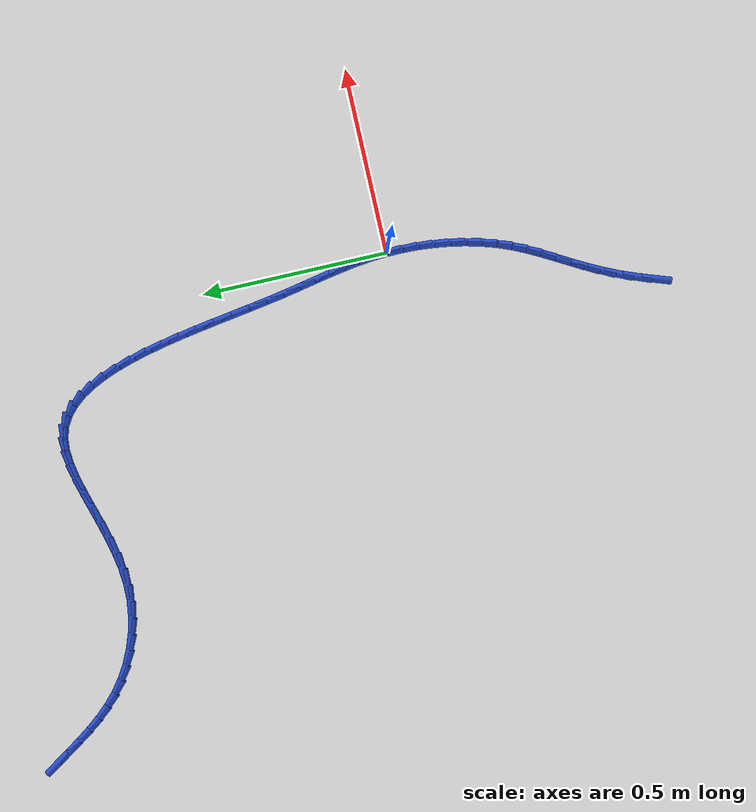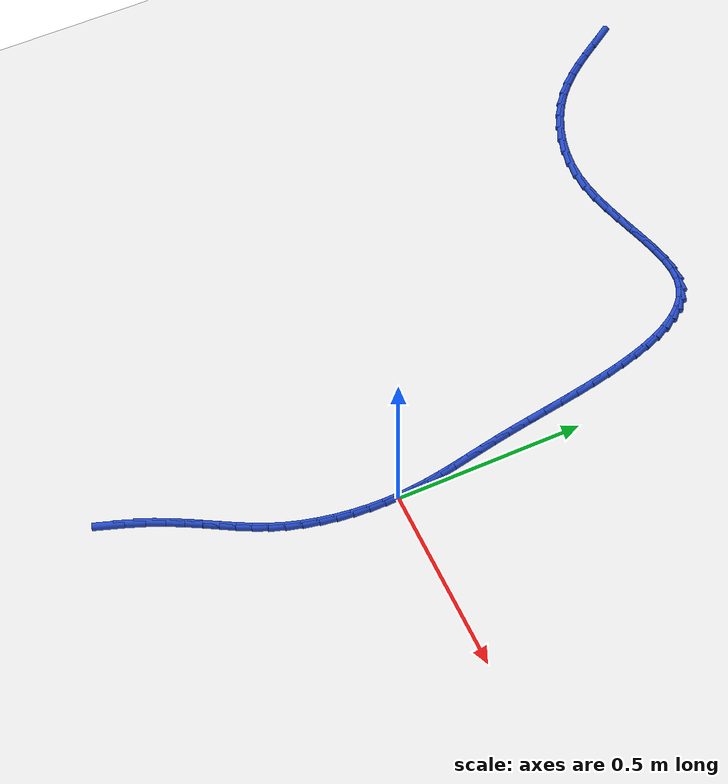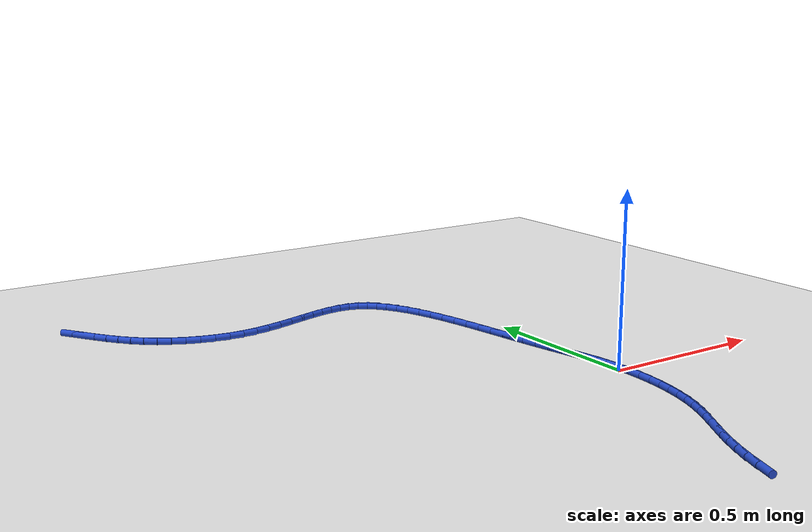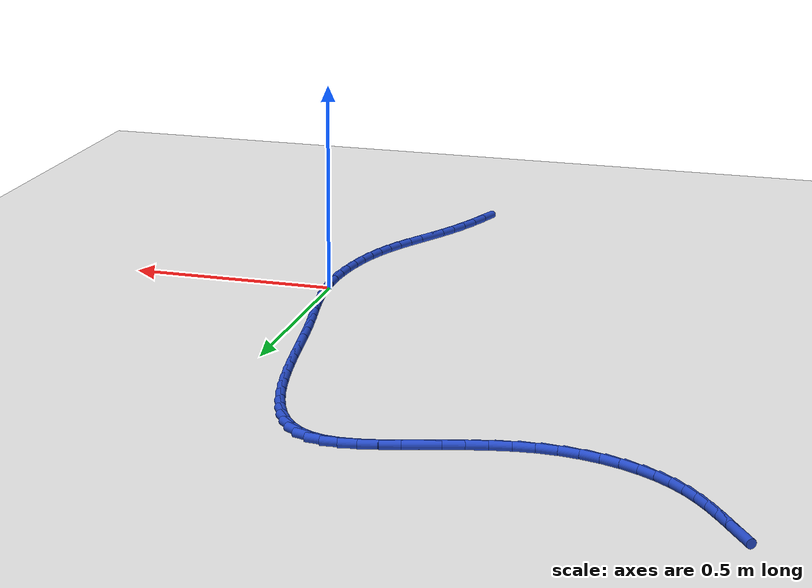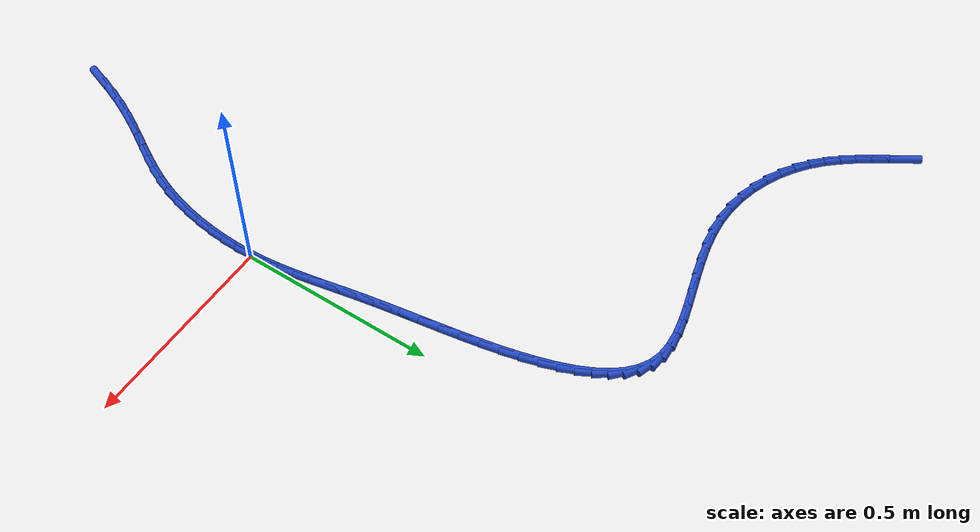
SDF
<sdf version="1.6">
 <world name="default">
  <model name="ground_plane">
   <static>1</static>
   <link name="link">
    <collision name="collision">
     <geometry><plane><normal>0 0 1</normal><size>100 100</size></plane></geometry>
     <surface><friction><ode><mu>100</mu><mu2>50</mu2></ode></friction></surface>
    </collision>
    <visual name="visual">
     <cast_shadows>0</cast_shadows>
     <geometry><plane><normal>0 0 1</normal><size>100 100</size></plane></geometry>
     <material>
      <script><uri>file://media/materials/scripts/gazebo.material</uri><name>Gazebo/WhiteGlow</name></script>
     </material>
    </visual>
   </link>
  </model>
  <model name="line">
   <link name="link_0">
    <pose>-1.734723475976807e-17 1.3877787807814457e-17 0.01 0 1.57 -1.5043519604034143</pose>
    <collision name="collision">
     <geometry><cylinder><radius>0.01</radius><length>0.08</length></cylinder></geometry>
    </collision>
    <visual name="visual">
     <material>
      <script><name>Gazebo/Blue</name><uri>file://media/materials/scripts/gazebo.material</uri></script>
     </material>
     <geometry><cylinder><radius>0.01</radius><length>0.08</length></cylinder></geometry>
    </visual>
   </link>
   <link name="link_1">
    <pose>-0.0026834916813015803 0.04032759418932018 0.01 0 1.57 -1.458504746673012</pose>
    <collision name="collision">
     <geometry><cylinder><radius>0.01</radius><length>0.08</length></cylinder></geometry>
    </collision>
    <visual name="visual">
     <material>
      <script><name>Gazebo/Blue</name><uri>file://media/materials/scripts/gazebo.material</uri></script>
     </material>
     <geometry><cylinder><radius>0.01</radius><length>0.08</length></cylinder></geometry>
    </visual>
   </link>
   <link name="link_2">
    <pose>-0.007159424009895546 0.08001982713552917 0.01 0 1.57 -1.4218654142681841</pose>
    <collision name="collision">
     <geometry><cylinder><radius>0.01</radius><length>0.08</length></cylinder></geometry>
    </collision>
    <visual name="visual">
     <material>
      <script><name>Gazebo/Blue</name><uri>file://media/materials/scripts/gazebo.material</uri></script>
     </material>
     <geometry><cylinder><radius>0.01</radius><length>0.08</length></cylinder></geometry>
    </visual>
   </link>
   <link name="link_3">
    <pose>-0.013086417790616197 0.1195220881624992 0.01 0 1.57 -1.3956213127764878</pose>
    <collision name="collision">
     <geometry><cylinder><radius>0.01</radius><length>0.08</length></cylinder></geometry>
    </collision>
    <visual name="visual">
     <material>
      <script><name>Gazebo/Blue</name><uri>file://media/materials/scripts/gazebo.material</uri></script>
     </material>
     <geometry><cylinder><radius>0.01</radius><length>0.08</length></cylinder></geometry>
    </visual>
   </link>
   <link name="link_4">
    <pose>-0.02012309382829782 0.15927976659410242 0.01 0 1.57 -1.3802241135491946</pose>
    <collision name="collision">
     <geometry><cylinder><radius>0.01</radius><length>0.08</length></cylinder></geometry>
    </collision>
    <visual name="visual">
     <material>
      <script><name>Gazebo/Blue</name><uri>file://media/materials/scripts/gazebo.material</uri></script>
     </material>
     <geometry><cylinder><radius>0.01</radius><length>0.08</length></cylinder></geometry>
    </visual>
   </link>
   <link name="link_5">
    <pose>-0.027928072927774696 0.19973825175421117 0.01 0 1.57 -1.3754592863642896</pose>
    <collision name="collision">
     <geometry><cylinder><radius>0.01</radius><length>0.08</length></cylinder></geometry>
    </collision>
    <visual name="visual">
     <material>
      <script><name>Gazebo/Blue</name><uri>file://media/materials/scripts/gazebo.material</uri></script>
     </material>
     <geometry><cylinder><radius>0.01</radius><length>0.08</length></cylinder></geometry>
    </visual>
   </link>
   <link name="link_6">
    <pose>-0.03615997589388112 0.2413429329666976 0.01 0 1.57 -1.3805742379604398</pose>
    <collision name="collision">
     <geometry><cylinder><radius>0.01</radius><length>0.08</length></cylinder></geometry>
    </collision>
    <visual name="visual">
     <material>
      <script><name>Gazebo/Blue</name><uri>file://media/materials/scripts/gazebo.material</uri></script>
     </material>
     <geometry><cylinder><radius>0.01</radius><length>0.08</length></cylinder></geometry>
    </visual>
   </link>
   <link name="link_7">
    <pose>-0.04447742353145137 0.28453919955543405 0.01 0 1.57 -1.394176663468916</pose>
    <collision name="collision">
     <geometry><cylinder><radius>0.01</radius><length>0.08</length></cylinder></geometry>
    </collision>
    <visual name="visual">
     <material>
      <script><name>Gazebo/Blue</name><uri>file://media/materials/scripts/gazebo.material</uri></script>
     </material>
     <geometry><cylinder><radius>0.01</radius><length>0.08</length></cylinder></geometry>
    </visual>
   </link>
   <link name="link_8">
    <pose>-0.05254782357955602 0.32975674487690937 0.01 0 1.57 -1.4081775667946435</pose>
    <collision name="collision">
     <geometry><cylinder><radius>0.01</radius><length>0.08</length></cylinder></geometry>
    </collision>
    <visual name="visual">
     <material>
      <script><name>Gazebo/Blue</name><uri>file://media/materials/scripts/gazebo.material</uri></script>
     </material>
     <geometry><cylinder><radius>0.01</radius><length>0.08</length></cylinder></geometry>
    </visual>
   </link>
   <link name="link_9">
    <pose>-0.06029386538016309 0.37696925663138847 0.01 0 1.57 -1.4152116685557234</pose>
    <collision name="collision">
     <geometry><cylinder><radius>0.01</radius><length>0.08</length></cylinder></geometry>
    </collision>
    <visual name="visual">
     <material>
      <script><name>Gazebo/Blue</name><uri>file://media/materials/scripts/gazebo.material</uri></script>
     </material>
     <geometry><cylinder><radius>0.01</radius><length>0.08</length></cylinder></geometry>
    </visual>
   </link>
   <link name="link_10">
    <pose>-0.06792710896623179 0.42563441718418826 0.01 0 1.57 -1.4156871256024404</pose>
    <collision name="collision">
     <geometry><cylinder><radius>0.01</radius><length>0.08</length></cylinder></geometry>
    </collision>
    <visual name="visual">
     <material>
      <script><name>Gazebo/Blue</name><uri>file://media/materials/scripts/gazebo.material</uri></script>
     </material>
     <geometry><cylinder><radius>0.01</radius><length>0.08</length></cylinder></geometry>
    </visual>
   </link>
   <link name="link_11">
    <pose>-0.07567465131681447 0.475182155489417 0.01 0 1.57 -1.4099653269743906</pose>
    <collision name="collision">
     <geometry><cylinder><radius>0.01</radius><length>0.08</length></cylinder></geometry>
    </collision>
    <visual name="visual">
     <material>
      <script><name>Gazebo/Blue</name><uri>file://media/materials/scripts/gazebo.material</uri></script>
     </material>
     <geometry><cylinder><radius>0.01</radius><length>0.08</length></cylinder></geometry>
    </visual>
   </link>
   <link name="link_12">
    <pose>-0.08376358941096355 0.525042400501184 0.01 0 1.57 -1.3980013513036647</pose>
    <collision name="collision">
     <geometry><cylinder><radius>0.01</radius><length>0.08</length></cylinder></geometry>
    </collision>
    <visual name="visual">
     <material>
      <script><name>Gazebo/Blue</name><uri>file://media/materials/scripts/gazebo.material</uri></script>
     </material>
     <geometry><cylinder><radius>0.01</radius><length>0.08</length></cylinder></geometry>
    </visual>
   </link>
   <link name="link_13">
    <pose>-0.09242102022773138 0.5746450811735981 0.01 0 1.57 -1.3793611161459607</pose>
    <collision name="collision">
     <geometry><cylinder><radius>0.01</radius><length>0.08</length></cylinder></geometry>
    </collision>
    <visual name="visual">
     <material>
      <script><name>Gazebo/Blue</name><uri>file://media/materials/scripts/gazebo.material</uri></script>
     </material>
     <geometry><cylinder><radius>0.01</radius><length>0.08</length></cylinder></geometry>
    </visual>
   </link>
   <link name="link_14">
    <pose>-0.10187404074617036 0.623420126460768 0.01 0 1.57 -1.3531854236751217</pose>
    <collision name="collision">
     <geometry><cylinder><radius>0.01</radius><length>0.08</length></cylinder></geometry>
    </collision>
    <visual name="visual">
     <material>
      <script><name>Gazebo/Blue</name><uri>file://media/materials/scripts/gazebo.material</uri></script>
     </material>
     <geometry><cylinder><radius>0.01</radius><length>0.08</length></cylinder></geometry>
    </visual>
   </link>
   <link name="link_15">
    <pose>-0.11234974794533283 0.6707974653168023 0.01 0 1.57 -1.3180997096604181</pose>
    <collision name="collision">
     <geometry><cylinder><radius>0.01</radius><length>0.08</length></cylinder></geometry>
    </collision>
    <visual name="visual">
     <material>
      <script><name>Gazebo/Blue</name><uri>file://media/materials/scripts/gazebo.material</uri></script>
     </material>
     <geometry><cylinder><radius>0.01</radius><length>0.08</length></cylinder></geometry>
    </visual>
   </link>
   <link name="link_16">
    <pose>-0.12407523880427127 0.7162070266958106 0.01 0 1.57 -1.2720614204648206</pose>
    <collision name="collision">
     <geometry><cylinder><radius>0.01</radius><length>0.08</length></cylinder></geometry>
    </collision>
    <visual name="visual">
     <material>
      <script><name>Gazebo/Blue</name><uri>file://media/materials/scripts/gazebo.material</uri></script>
     </material>
     <geometry><cylinder><radius>0.01</radius><length>0.08</length></cylinder></geometry>
    </visual>
   </link>
   <link name="link_17">
    <pose>-0.137277610302038 0.7590787395519011 0.01 0 1.57 -1.212137518840905</pose>
    <collision name="collision">
     <geometry><cylinder><radius>0.01</radius><length>0.08</length></cylinder></geometry>
    </collision>
    <visual name="visual">
     <material>
      <script><name>Gazebo/Blue</name><uri>file://media/materials/scripts/gazebo.material</uri></script>
     </material>
     <geometry><cylinder><radius>0.01</radius><length>0.08</length></cylinder></geometry>
    </visual>
   </link>
   <link name="link_18">
    <pose>-0.15218395941768537 0.7988425328391827 0.01 0 1.57 -1.1342287332083532</pose>
    <collision name="collision">
     <geometry><cylinder><radius>0.01</radius><length>0.08</length></cylinder></geometry>
    </collision>
    <visual name="visual">
     <material>
      <script><name>Gazebo/Blue</name><uri>file://media/materials/scripts/gazebo.material</uri></script>
     </material>
     <geometry><cylinder><radius>0.01</radius><length>0.08</length></cylinder></geometry>
    </visual>
   </link>
   <link name="link_19">
    <pose>-0.16902138313026588 0.8349283355117649 0.01 0 1.57 -1.0328528033202082</pose>
    <collision name="collision">
     <geometry><cylinder><radius>0.01</radius><length>0.08</length></cylinder></geometry>
    </collision>
    <visual name="visual">
     <material>
      <script><name>Gazebo/Blue</name><uri>file://media/materials/scripts/gazebo.material</uri></script>
     </material>
     <geometry><cylinder><radius>0.01</radius><length>0.08</length></cylinder></geometry>
    </visual>
   </link>
   <link name="link_20">
    <pose>-0.18801697841883183 0.8667660765237559 0.01 0 1.57 -0.9013771820219533</pose>
    <collision name="collision">
     <geometry><cylinder><radius>0.01</radius><length>0.08</length></cylinder></geometry>
    </collision>
    <visual name="visual">
     <material>
      <script><name>Gazebo/Blue</name><uri>file://media/materials/scripts/gazebo.material</uri></script>
     </material>
     <geometry><cylinder><radius>0.01</radius><length>0.08</length></cylinder></geometry>
    </visual>
   </link>
   <link name="link_21">
    <pose>-0.20939784226243557 0.893785684829265 0.01 0 1.57 -0.7336778909110361</pose>
    <collision name="collision">
     <geometry><cylinder><radius>0.01</radius><length>0.08</length></cylinder></geometry>
    </collision>
    <visual name="visual">
     <material>
      <script><name>Gazebo/Blue</name><uri>file://media/materials/scripts/gazebo.material</uri></script>
     </material>
     <geometry><cylinder><radius>0.01</radius><length>0.08</length></cylinder></geometry>
    </visual>
   </link>
   <link name="link_22">
    <pose>-0.23339107164012962 0.9154170893824007 0.01 0 1.57 -0.5286505692719687</pose>
    <collision name="collision">
     <geometry><cylinder><radius>0.01</radius><length>0.08</length></cylinder></geometry>
    </collision>
    <visual name="visual">
     <material>
      <script><name>Gazebo/Blue</name><uri>file://media/materials/scripts/gazebo.material</uri></script>
     </material>
     <geometry><cylinder><radius>0.01</radius><length>0.08</length></cylinder></geometry>
    </visual>
   </link>
   <link name="link_23">
    <pose>-0.2602237635309661 0.9310902191372717 0.01 0 1.57 -0.2969897905777262</pose>
    <collision name="collision">
     <geometry><cylinder><radius>0.01</radius><length>0.08</length></cylinder></geometry>
    </collision>
    <visual name="visual">
     <material>
      <script><name>Gazebo/Blue</name><uri>file://media/materials/scripts/gazebo.material</uri></script>
     </material>
     <geometry><cylinder><radius>0.01</radius><length>0.08</length></cylinder></geometry>
    </visual>
   </link>
   <link name="link_24">
    <pose>-0.2901212865891916 0.9402400886339856 0.01 0 1.57 -0.07936995274728521</pose>
    <collision name="collision">
     <geometry><cylinder><radius>0.01</radius><length>0.08</length></cylinder></geometry>
    </collision>
    <visual name="visual">
     <material>
      <script><name>Gazebo/Blue</name><uri>file://media/materials/scripts/gazebo.material</uri></script>
     </material>
     <geometry><cylinder><radius>0.01</radius><length>0.08</length></cylinder></geometry>
    </visual>
   </link>
   <link name="link_25">
    <pose>-0.323117737645268 0.9428645286758671 0.01 0 1.57 0.07915999708260504</pose>
    <collision name="collision">
     <geometry><cylinder><radius>0.01</radius><length>0.08</length></cylinder></geometry>
    </collision>
    <visual name="visual">
     <material>
      <script><name>Gazebo/Blue</name><uri>file://media/materials/scripts/gazebo.material</uri></script>
     </material>
     <geometry><cylinder><radius>0.01</radius><length>0.08</length></cylinder></geometry>
    </visual>
   </link>
   <link name="link_26">
    <pose>-0.35888497132907304 0.9400272656993673 0.01 0 1.57 0.18432782117440763</pose>
    <collision name="collision">
     <geometry><cylinder><radius>0.01</radius><length>0.08</length></cylinder></geometry>
    </collision>
    <visual name="visual">
     <material>
      <script><name>Gazebo/Blue</name><uri>file://media/materials/scripts/gazebo.material</uri></script>
     </material>
     <geometry><cylinder><radius>0.01</radius><length>0.08</length></cylinder></geometry>
    </visual>
   </link>
   <link name="link_27">
    <pose>-0.39705448364341567 0.9329107811735707 0.01 0 1.57 0.24877695659034246</pose>
    <collision name="collision">
     <geometry><cylinder><radius>0.01</radius><length>0.08</length></cylinder></geometry>
    </collision>
    <visual name="visual">
     <material>
      <script><name>Gazebo/Blue</name><uri>file://media/materials/scripts/gazebo.material</uri></script>
     </material>
     <geometry><cylinder><radius>0.01</radius><length>0.08</length></cylinder></geometry>
    </visual>
   </link>
   <link name="link_28">
    <pose>-0.4372577705911052 0.9226975565675611 0.01 0 1.57 0.2819401736774933</pose>
    <collision name="collision">
     <geometry><cylinder><radius>0.01</radius><length>0.08</length></cylinder></geometry>
    </collision>
    <visual name="visual">
     <material>
      <script><name>Gazebo/Blue</name><uri>file://media/materials/scripts/gazebo.material</uri></script>
     </material>
     <geometry><cylinder><radius>0.01</radius><length>0.08</length></cylinder></geometry>
    </visual>
   </link>
   <link name="link_29">
    <pose>-0.4791263281749508 0.9105700733504232 0.01 0 1.57 0.2895356792802546</pose>
    <collision name="collision">
     <geometry><cylinder><radius>0.01</radius><length>0.08</length></cylinder></geometry>
    </collision>
    <visual name="visual">
     <material>
      <script><name>Gazebo/Blue</name><uri>file://media/materials/scripts/gazebo.material</uri></script>
     </material>
     <geometry><cylinder><radius>0.01</radius><length>0.08</length></cylinder></geometry>
    </visual>
   </link>
   <link name="link_30">
    <pose>-0.5222916523977619 0.897710812991241 0.01 0 1.57 0.27431949389599986</pose>
    <collision name="collision">
     <geometry><cylinder><radius>0.01</radius><length>0.08</length></cylinder></geometry>
    </collision>
    <visual name="visual">
     <material>
      <script><name>Gazebo/Blue</name><uri>file://media/materials/scripts/gazebo.material</uri></script>
     </material>
     <geometry><cylinder><radius>0.01</radius><length>0.08</length></cylinder></geometry>
    </visual>
   </link>
   <link name="link_31">
    <pose>-0.5663852392623479 0.8853022569590989 0.01 0 1.57 0.23678477718743685</pose>
    <collision name="collision">
     <geometry><cylinder><radius>0.01</radius><length>0.08</length></cylinder></geometry>
    </collision>
    <visual name="visual">
     <material>
      <script><name>Gazebo/Blue</name><uri>file://media/materials/scripts/gazebo.material</uri></script>
     </material>
     <geometry><cylinder><radius>0.01</radius><length>0.08</length></cylinder></geometry>
    </visual>
   </link>
   <link name="link_32">
    <pose>-0.6110385847715172 0.8745268867230808 0.01 0 1.57 0.17566572827166452</pose>
    <collision name="collision">
     <geometry><cylinder><radius>0.01</radius><length>0.08</length></cylinder></geometry>
    </collision>
    <visual name="visual">
     <material>
      <script><name>Gazebo/Blue</name><uri>file://media/materials/scripts/gazebo.material</uri></script>
     </material>
     <geometry><cylinder><radius>0.01</radius><length>0.08</length></cylinder></geometry>
    </visual>
   </link>
   <link name="link_33">
    <pose>-0.6558831849280798 0.8665671837522715 0.01 0 1.57 0.08845871000474242</pose>
    <collision name="collision">
     <geometry><cylinder><radius>0.01</radius><length>0.08</length></cylinder></geometry>
    </collision>
    <visual name="visual">
     <material>
      <script><name>Gazebo/Blue</name><uri>file://media/materials/scripts/gazebo.material</uri></script>
     </material>
     <geometry><cylinder><radius>0.01</radius><length>0.08</length></cylinder></geometry>
    </visual>
   </link>
   <link name="link_34">
    <pose>-0.7005505357237408 0.8626056291470503 0.01 0 1.57 -0.021541568695381017</pose>
    <collision name="collision">
     <geometry><cylinder><radius>0.01</radius><length>0.08</length></cylinder></geometry>
    </collision>
    <visual name="visual">
     <material>
      <script><name>Gazebo/Blue</name><uri>file://media/materials/scripts/gazebo.material</uri></script>
     </material>
     <geometry><cylinder><radius>0.01</radius><length>0.08</length></cylinder></geometry>
    </visual>
   </link>
   <link name="link_35">
    <pose>-0.7446640423481244 0.8635560502958258 0.01 0 1.57 -0.1321794380489603</pose>
    <collision name="collision">
     <geometry><cylinder><radius>0.01</radius><length>0.08</length></cylinder></geometry>
    </collision>
    <visual name="visual">
     <material>
      <script><name>Gazebo/Blue</name><uri>file://media/materials/scripts/gazebo.material</uri></script>
     </material>
     <geometry><cylinder><radius>0.01</radius><length>0.08</length></cylinder></geometry>
    </visual>
   </link>
   <link name="link_36">
    <pose>-0.7878158195082968 0.8692932794163742 0.01 0 1.57 -0.23830064526157757</pose>
    <collision name="collision">
     <geometry><cylinder><radius>0.01</radius><length>0.08</length></cylinder></geometry>
    </collision>
    <visual name="visual">
     <material>
      <script><name>Gazebo/Blue</name><uri>file://media/materials/scripts/gazebo.material</uri></script>
     </material>
     <geometry><cylinder><radius>0.01</radius><length>0.08</length></cylinder></geometry>
    </visual>
   </link>
   <link name="link_37">
    <pose>-0.8295904186403948 0.8794410115969616 0.01 0 1.57 -0.3408629632215356</pose>
    <collision name="collision">
     <geometry><cylinder><radius>0.01</radius><length>0.08</length></cylinder></geometry>
    </collision>
    <visual name="visual">
     <material>
      <script><name>Gazebo/Blue</name><uri>file://media/materials/scripts/gazebo.material</uri></script>
     </material>
     <geometry><cylinder><radius>0.01</radius><length>0.08</length></cylinder></geometry>
    </visual>
   </link>
   <link name="link_38">
    <pose>-0.8695723911805537 0.8936229419258521 0.01 0 1.57 -0.44122601465009215</pose>
    <collision name="collision">
     <geometry><cylinder><radius>0.01</radius><length>0.08</length></cylinder></geometry>
    </collision>
    <visual name="visual">
     <material>
      <script><name>Gazebo/Blue</name><uri>file://media/materials/scripts/gazebo.material</uri></script>
     </material>
     <geometry><cylinder><radius>0.01</radius><length>0.08</length></cylinder></geometry>
    </visual>
   </link>
   <link name="link_39">
    <pose>-0.9073462885649108 0.9114627654913123 0.01 0 1.57 -0.5410716455367891</pose>
    <collision name="collision">
     <geometry><cylinder><radius>0.01</radius><length>0.08</length></cylinder></geometry>
    </collision>
    <visual name="visual">
     <material>
      <script><name>Gazebo/Blue</name><uri>file://media/materials/scripts/gazebo.material</uri></script>
     </material>
     <geometry><cylinder><radius>0.01</radius><length>0.08</length></cylinder></geometry>
    </visual>
   </link>
   <link name="link_40">
    <pose>-0.9424966622296017 0.9325841773816068 0.01 0 1.57 -0.6423642866143113</pose>
    <collision name="collision">
     <geometry><cylinder><radius>0.01</radius><length>0.08</length></cylinder></geometry>
    </collision>
    <visual name="visual">
     <material>
      <script><name>Gazebo/Blue</name><uri>file://media/materials/scripts/gazebo.material</uri></script>
     </material>
     <geometry><cylinder><radius>0.01</radius><length>0.08</length></cylinder></geometry>
    </visual>
   </link>
   <link name="link_41">
    <pose>-0.9746082651095567 0.956610888760878 0.01 0 1.57 -0.743422803803684</pose>
    <collision name="collision">
     <geometry><cylinder><radius>0.01</radius><length>0.08</length></cylinder></geometry>
    </collision>
    <visual name="visual">
     <material>
      <script><name>Gazebo/Blue</name><uri>file://media/materials/scripts/gazebo.material</uri></script>
     </material>
     <geometry><cylinder><radius>0.01</radius><length>0.08</length></cylinder></geometry>
    </visual>
   </link>
   <link name="link_42">
    <pose>-1.0035139991393027 0.9831864084936581 0.01 0 1.57 -0.8318706769109073</pose>
    <collision name="collision">
     <geometry><cylinder><radius>0.01</radius><length>0.08</length></cylinder></geometry>
    </collision>
    <visual name="visual">
     <material>
      <script><name>Gazebo/Blue</name><uri>file://media/materials/scripts/gazebo.material</uri></script>
     </material>
     <geometry><cylinder><radius>0.01</radius><length>0.08</length></cylinder></geometry>
    </visual>
   </link>
   <link name="link_43">
    <pose>-1.0297781559851649 1.0120125968172542 0.01 0 1.57 -0.9022364067525769</pose>
    <collision name="collision">
     <geometry><cylinder><radius>0.01</radius><length>0.08</length></cylinder></geometry>
    </collision>
    <visual name="visual">
     <material>
      <script><name>Gazebo/Blue</name><uri>file://media/materials/scripts/gazebo.material</uri></script>
     </material>
     <geometry><cylinder><radius>0.01</radius><length>0.08</length></cylinder></geometry>
    </visual>
   </link>
   <link name="link_44">
    <pose>-1.054099110921042 1.0428020113608394 0.01 0 1.57 -0.9528615131294401</pose>
    <collision name="collision">
     <geometry><cylinder><radius>0.01</radius><length>0.08</length></cylinder></geometry>
    </collision>
    <visual name="visual">
     <material>
      <script><name>Gazebo/Blue</name><uri>file://media/materials/scripts/gazebo.material</uri></script>
     </material>
     <geometry><cylinder><radius>0.01</radius><length>0.08</length></cylinder></geometry>
    </visual>
   </link>
   <link name="link_45">
    <pose>-1.0771752392208316 1.0752672097535865 0.01 0 1.57 -0.9835988584621633</pose>
    <collision name="collision">
     <geometry><cylinder><radius>0.01</radius><length>0.08</length></cylinder></geometry>
    </collision>
    <visual name="visual">
     <material>
      <script><name>Gazebo/Blue</name><uri>file://media/materials/scripts/gazebo.material</uri></script>
     </material>
     <geometry><cylinder><radius>0.01</radius><length>0.08</length></cylinder></geometry>
    </visual>
   </link>
   <link name="link_46">
    <pose>-1.0997049161584325 1.1091207496246687 0.01 0 1.57 -0.9952015175900911</pose>
    <collision name="collision">
     <geometry><cylinder><radius>0.01</radius><length>0.08</length></cylinder></geometry>
    </collision>
    <visual name="visual">
     <material>
      <script><name>Gazebo/Blue</name><uri>file://media/materials/scripts/gazebo.material</uri></script>
     </material>
     <geometry><cylinder><radius>0.01</radius><length>0.08</length></cylinder></geometry>
    </visual>
   </link>
   <link name="link_47">
    <pose>-1.1223865170077425 1.1440751886032592 0.01 0 1.57 -0.9888836047444356</pose>
    <collision name="collision">
     <geometry><cylinder><radius>0.01</radius><length>0.08</length></cylinder></geometry>
    </collision>
    <visual name="visual">
     <material>
      <script><name>Gazebo/Blue</name><uri>file://media/materials/scripts/gazebo.material</uri></script>
     </material>
     <geometry><cylinder><radius>0.01</radius><length>0.08</length></cylinder></geometry>
    </visual>
   </link>
   <link name="link_183">
    <pose>-0.22442289449874173 -0.6781591645662735 0.01 0 1.57 1.2345686340750197</pose>
    <collision name="collision">
     <geometry><cylinder><radius>0.01</radius><length>0.08</length></cylinder></geometry>
    </collision>
    <visual name="visual">
     <material>
      <script><name>Gazebo/Blue</name><uri>file://media/materials/scripts/gazebo.material</uri></script>
     </material>
     <geometry><cylinder><radius>0.01</radius><length>0.08</length></cylinder></geometry>
    </visual>
   </link>
   <link name="link_184">
    <pose>-0.20734242162964647 -0.6292877428982162 0.01 0 1.57 1.1929815462223214</pose>
    <collision name="collision">
     <geometry><cylinder><radius>0.01</radius><length>0.08</length></cylinder></geometry>
    </collision>
    <visual name="visual">
     <material>
      <script><name>Gazebo/Blue</name><uri>file://media/materials/scripts/gazebo.material</uri></script>
     </material>
     <geometry><cylinder><radius>0.01</radius><length>0.08</length></cylinder></geometry>
    </visual>
   </link>
   <link name="link_185">
    <pose>-0.1892170042552255 -0.5836181016707835 0.01 0 1.57 1.1422279375692106</pose>
    <collision name="collision">
     <geometry><cylinder><radius>0.01</radius><length>0.08</length></cylinder></geometry>
    </collision>
    <visual name="visual">
     <material>
      <script><name>Gazebo/Blue</name><uri>file://media/materials/scripts/gazebo.material</uri></script>
     </material>
     <geometry><cylinder><radius>0.01</radius><length>0.08</length></cylinder></geometry>
    </visual>
   </link>
   <link name="link_186">
    <pose>-0.17001156620883293 -0.541582903097124 0.01 0 1.57 1.098730681312792</pose>
    <collision name="collision">
     <geometry><cylinder><radius>0.01</radius><length>0.08</length></cylinder></geometry>
    </collision>
    <visual name="visual">
     <material>
      <script><name>Gazebo/Blue</name><uri>file://media/materials/scripts/gazebo.material</uri></script>
     </material>
     <geometry><cylinder><radius>0.01</radius><length>0.08</length></cylinder></geometry>
    </visual>
   </link>
   <link name="link_187">
    <pose>-0.1501018203609593 -0.502587560272657 0.01 0 1.57 1.0689470298888213</pose>
    <collision name="collision">
     <geometry><cylinder><radius>0.01</radius><length>0.08</length></cylinder></geometry>
    </collision>
    <visual name="visual">
     <material>
      <script><name>Gazebo/Blue</name><uri>file://media/materials/scripts/gazebo.material</uri></script>
     </material>
     <geometry><cylinder><radius>0.01</radius><length>0.08</length></cylinder></geometry>
    </visual>
   </link>
   <link name="link_188">
    <pose>-0.12994066364474205 -0.4658444741793129 0.01 0 1.57 1.055922131439748</pose>
    <collision name="collision">
     <geometry><cylinder><radius>0.01</radius><length>0.08</length></cylinder></geometry>
    </collision>
    <visual name="visual">
     <material>
      <script><name>Gazebo/Blue</name><uri>file://media/materials/scripts/gazebo.material</uri></script>
     </material>
     <geometry><cylinder><radius>0.01</radius><length>0.08</length></cylinder></geometry>
    </visual>
   </link>
   <link name="link_189">
    <pose>-0.10998099299331857 -0.4305660457990205 0.01 0 1.57 1.061882011541899</pose>
    <collision name="collision">
     <geometry><cylinder><radius>0.01</radius><length>0.08</length></cylinder></geometry>
    </collision>
    <visual name="visual">
     <material>
      <script><name>Gazebo/Blue</name><uri>file://media/materials/scripts/gazebo.material</uri></script>
     </material>
     <geometry><cylinder><radius>0.01</radius><length>0.08</length></cylinder></geometry>
    </visual>
   </link>
   <link name="link_190">
    <pose>-0.09067570533982626 -0.3959646761137099 0.01 0 1.57 1.0879309252851752</pose>
    <collision name="collision">
     <geometry><cylinder><radius>0.01</radius><length>0.08</length></cylinder></geometry>
    </collision>
    <visual name="visual">
     <material>
      <script><name>Gazebo/Blue</name><uri>file://media/materials/scripts/gazebo.material</uri></script>
     </material>
     <geometry><cylinder><radius>0.01</radius><length>0.08</length></cylinder></geometry>
    </visual>
   </link>
   <link name="link_191">
    <pose>-0.07247769761740251 -0.36125276610531043 0.01 0 1.57 1.1337124957523226</pose>
    <collision name="collision">
     <geometry><cylinder><radius>0.01</radius><length>0.08</length></cylinder></geometry>
    </collision>
    <visual name="visual">
     <material>
      <script><name>Gazebo/Blue</name><uri>file://media/materials/scripts/gazebo.material</uri></script>
     </material>
     <geometry><cylinder><radius>0.01</radius><length>0.08</length></cylinder></geometry>
    </visual>
   </link>
   <link name="link_192">
    <pose>-0.05583986675918507 -0.3256427167557524 0.01 0 1.57 1.1964993722864783</pose>
    <collision name="collision">
     <geometry><cylinder><radius>0.01</radius><length>0.08</length></cylinder></geometry>
    </collision>
    <visual name="visual">
     <material>
      <script><name>Gazebo/Blue</name><uri>file://media/materials/scripts/gazebo.material</uri></script>
     </material>
     <geometry><cylinder><radius>0.01</radius><length>0.08</length></cylinder></geometry>
    </visual>
   </link>
   <link name="link_193">
    <pose>-0.04120242652084634 -0.2883797639512973 0.01 0 1.57 1.2626407390983558</pose>
    <collision name="collision">
     <geometry><cylinder><radius>0.01</radius><length>0.08</length></cylinder></geometry>
    </collision>
    <visual name="visual">
     <material>
      <script><name>Gazebo/Blue</name><uri>file://media/materials/scripts/gazebo.material</uri></script>
     </material>
     <geometry><cylinder><radius>0.01</radius><length>0.08</length></cylinder></geometry>
    </visual>
   </link>
   <link name="link_194">
    <pose>-0.02876977866411429 -0.24931962658088203 0.01 0 1.57 1.3231138202808217</pose>
    <collision name="collision">
     <geometry><cylinder><radius>0.01</radius><length>0.08</length></cylinder></geometry>
    </collision>
    <visual name="visual">
     <material>
      <script><name>Gazebo/Blue</name><uri>file://media/materials/scripts/gazebo.material</uri></script>
     </material>
     <geometry><cylinder><radius>0.01</radius><length>0.08</length></cylinder></geometry>
    </visual>
   </link>
   <link name="link_195">
    <pose>-0.01853793252575185 -0.2088575212544803 0.01 0 1.57 1.3791567792089823</pose>
    <collision name="collision">
     <geometry><cylinder><radius>0.01</radius><length>0.08</length></cylinder></geometry>
    </collision>
    <visual name="visual">
     <material>
      <script><name>Gazebo/Blue</name><uri>file://media/materials/scripts/gazebo.material</uri></script>
     </material>
     <geometry><cylinder><radius>0.01</radius><length>0.08</length></cylinder></geometry>
    </visual>
   </link>
   <link name="link_196">
    <pose>-0.010495724459773759 -0.1674072343925872 0.01 0 1.57 1.4321606854051459</pose>
    <collision name="collision">
     <geometry><cylinder><radius>0.01</radius><length>0.08</length></cylinder></geometry>
    </collision>
    <visual name="visual">
     <material>
      <script><name>Gazebo/Blue</name><uri>file://media/materials/scripts/gazebo.material</uri></script>
     </material>
     <geometry><cylinder><radius>0.01</radius><length>0.08</length></cylinder></geometry>
    </visual>
   </link>
   <link name="link_197">
    <pose>-0.004631990820194774 -0.12538255241569762 0.01 0 1.57 1.4833960525344363</pose>
    <collision name="collision">
     <geometry><cylinder><radius>0.01</radius><length>0.08</length></cylinder></geometry>
    </collision>
    <visual name="visual">
     <material>
      <script><name>Gazebo/Blue</name><uri>file://media/materials/scripts/gazebo.material</uri></script>
     </material>
     <geometry><cylinder><radius>0.01</radius><length>0.08</length></cylinder></geometry>
    </visual>
   </link>
   <link name="link_198">
    <pose>-0.000935567961029653 -0.08319726174430657 0.01 0 1.57 1.5340802297441816</pose>
    <collision name="collision">
     <geometry><cylinder><radius>0.01</radius><length>0.08</length></cylinder></geometry>
    </collision>
    <visual name="visual">
     <material>
      <script><name>Gazebo/Blue</name><uri>file://media/materials/scripts/gazebo.material</uri></script>
     </material>
     <geometry><cylinder><radius>0.01</radius><length>0.08</length></cylinder></geometry>
    </visual>
   </link>
   <link name="link_199">
    <pose>0.0006047077637068559 -0.04126514879890894 0.01 0 1.57 -1.5561431751457646</pose>
    <collision name="collision">
     <geometry><cylinder><radius>0.01</radius><length>0.08</length></cylinder></geometry>
    </collision>
    <visual name="visual">
     <material>
      <script><name>Gazebo/Blue</name><uri>file://media/materials/scripts/gazebo.material</uri></script>
     </material>
     <geometry><cylinder><radius>0.01</radius><length>0.08</length></cylinder></geometry>
    </visual>
   </link>
   <link name="link_200">
    <pose>-5.204170427930421e-18 1.734723475976807e-16 0.01 0 1.57 -1.5027525088986027</pose>
    <collision name="collision">
     <geometry><cylinder><radius>0.01</radius><length>0.08</length></cylinder></geometry>
    </collision>
    <visual name="visual">
     <material>
      <script><name>Gazebo/Blue</name><uri>file://media/materials/scripts/gazebo.material</uri></script>
     </material>
     <geometry><cylinder><radius>0.01</radius><length>0.08</length></cylinder></geometry>
    </visual>
   </link>
   <link name="link_201">
    <pose>-0.002738527606165074 0.040184398231926745 0.01 0 1.57 -1.5027525088986033</pose>
    <collision name="collision">
     <geometry><cylinder><radius>0.01</radius><length>0.08</length></cylinder></geometry>
    </collision>
    <visual name="visual">
     <material>
      <script><name>Gazebo/Blue</name><uri>file://media/materials/scripts/gazebo.material</uri></script>
     </material>
     <geometry><cylinder><radius>0.01</radius><length>0.08</length></cylinder></geometry>
    </visual>
   </link>
  </model>
 </world>
</sdf>
